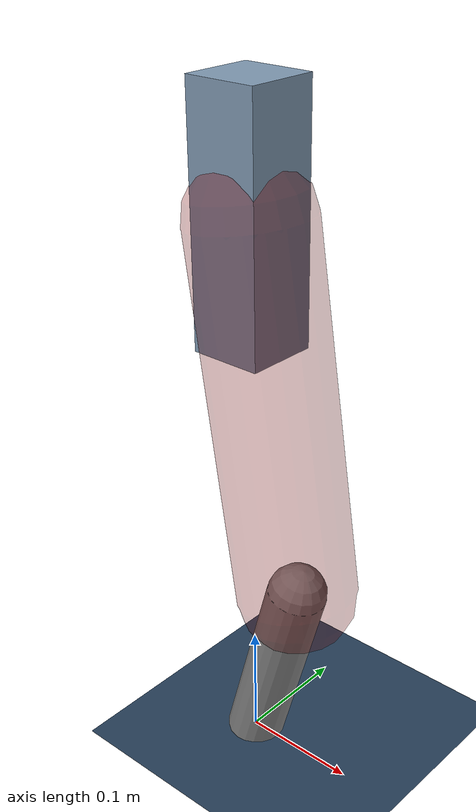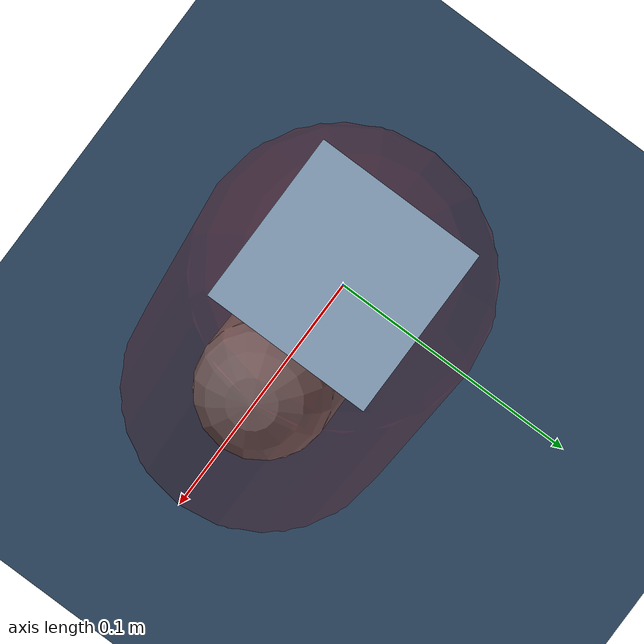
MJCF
<mujoco model="Hopper2D">
	<compiler inertiafromgeom="true" angle="radian" />
	<option timestep="0.001" integrator="implicit" cone="elliptic" solver="Newton" tolerance="1e-10" />

	<default>
		<geom contype="1" conaffinity="1" condim="3" friction="2 0.005 0.0001" solref="0.005 1" />
		<joint limited="true" damping="0.1" />
	</default>

	<asset>
		<texture name="skybox" type="skybox" builtin="gradient" rgb1=".4 .6 .8" rgb2="0 0 0" width="800" height="800" />
		<texture name="grid" type="2d" builtin="checker" rgb1=".1 .2 .3" rgb2=".2 .3 .4" width="300" height="300" mark="edge" markrgb=".2 .3 .4" />
		<material name="ground" texture="grid" texrepeat="1 1" texuniform="true" reflectance="0.1" />
		<material name="leg" rgba="0.5 0.6 0.7 1" />
	</asset>

	<worldbody>

		<geom name="floor" type="plane" size="5 5 0.25" material="ground" />

		<light directional="false" diffuse="0.8 0.8 0.8" specular="0.3 0.3 0.3" pos="0 0 2" dir="0 0 -1" />
		<light mode="targetbodycom" target="base" directional="false" diffuse="0.8 0.8 0.8" specular="0.3 0.3 0.3" pos="0 0 2" dir="0 0 -1" />

		<camera name="fixed" pos="0 -2 1" xyaxes="1 0 0 0 0 1" />
		<camera name="tracking" mode="trackcom" pos="0 -3 1" />

		<body name="root" pos="0 0 0.47017223435774025">
			<joint name="slide_x" type="slide" axis="1 0 0" range="-100 100" />
			<joint name="slide_z" type="slide" axis="0 0 1" range="0 10" />

			<body name="base" pos="0 0 0">
				<geom name="torso" type="box" size="0.03 0.03 0.1" mass="4.134" material="leg" />

				<body name="link1" pos="0 0 0" euler="0 1.4174047413880293 0">
					<joint type="hinge" axis="0 -1 0" pos="0 0 0" name="hinge1" limited="true" range="-3.14 3.14" stiffness="0" damping="0.1" />
					<geom name="thigh" type="capsule" fromto="0 0 0 0.30615783049589873 0 0" size="0.05" rgba="0.5 0 0 0.3" mass="1.0054261423389266" />

					<body name="link2" pos="0.30615783049589873 0 0" euler="0 0.42555655566500056 0">
						<joint type="hinge" axis="0 -1 0" pos="0 0 0" name="hinge2" limited="true" range="-3.14 3.14" stiffness="0" damping="0.1" />
						<geom name="shank" type="capsule" fromto="0 0 0 0.17401440386184153 0 0" size="0.025" mass="0.37871296347565736" />

					</body>
				</body>
			</body>
		</body>
	</worldbody>

	<actuator>
		<motor name="torque1" joint="hinge1" ctrlrange="-264.88923744035156 264.88923744035156" ctrllimited="true" gear="1" />
		<motor name="torque2" joint="hinge2" ctrlrange="-105.83538945990296 105.83538945990296" ctrllimited="true" gear="1" />
	</actuator>
</mujoco>
